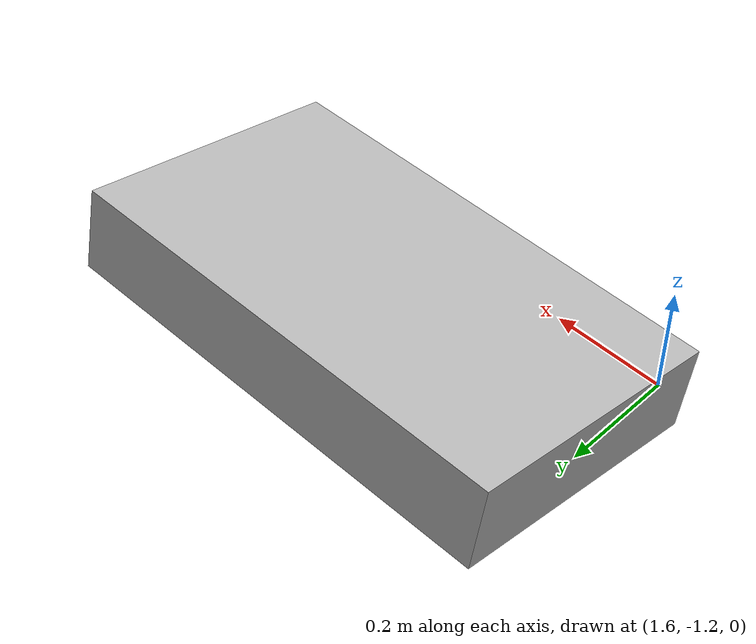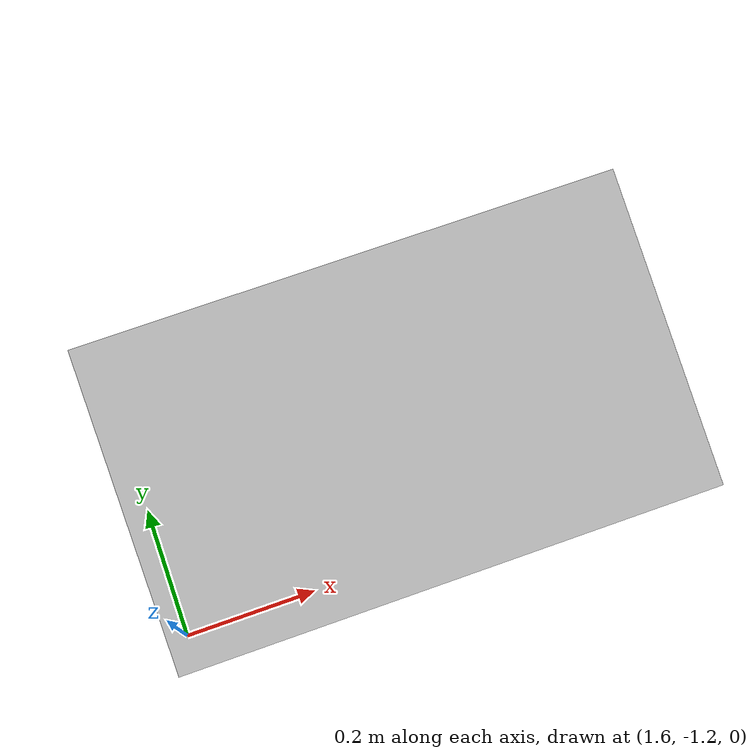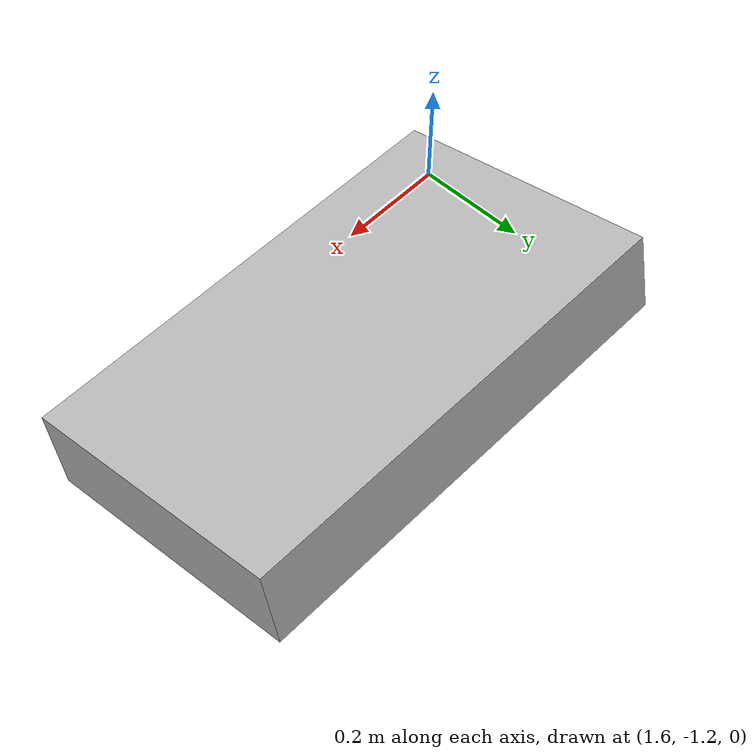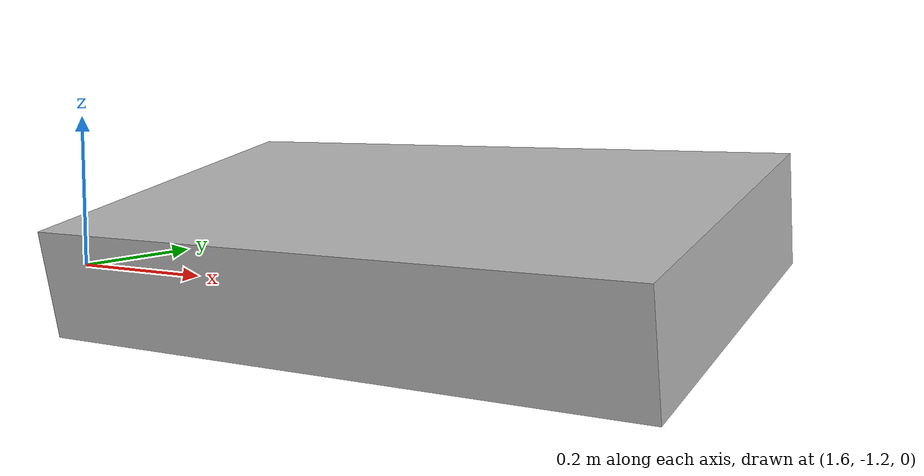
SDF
<?xml version="1.0" ?>
<sdf version="1.6">
        <model name="box_obstacle">
            <static>true</static>
            <pose>2 -1 0.028 1.7821 0 0</pose>
            <link name="box">
                <collision name="box_collision">
                    <pose frame="">0 0 0 0 0 0</pose>
                    <geometry>
                        <box>
                            <size>0.85 0.15 0.50</size>
                        </box>
                    </geometry>
                    <surface>
                        <friction>
                            <ode>
                                <mu>1</mu>
                            </ode>
                        </friction>
                    </surface>
                </collision>
                <visual name="box_visual">
                    <pose frame="">0 0 0 0 0 0</pose>
                    <geometry>
                        <box>
                            <size>0.85 0.15 0.50</size>
                        </box>
                    </geometry>
                </visual>
            </link>
        </model>
</sdf>
